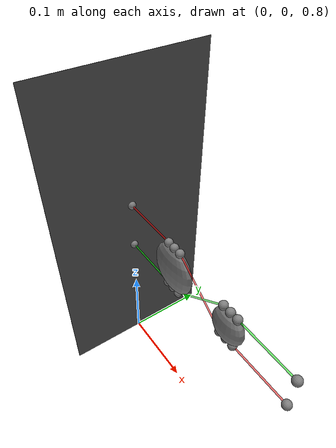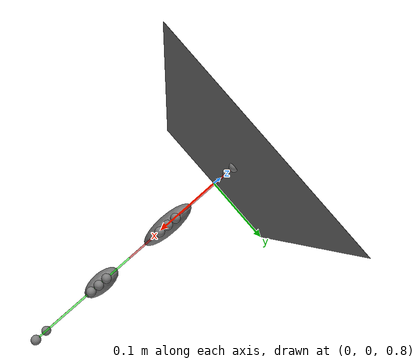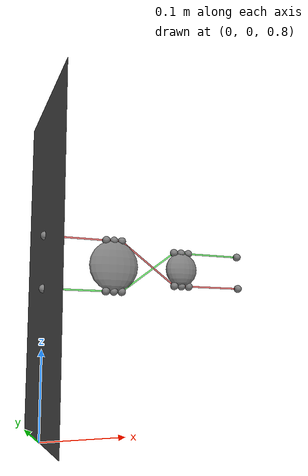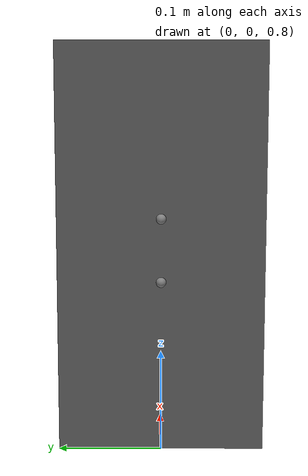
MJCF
<mujoco>

	<option timestep="1e-4"/>
	<option gravity="0 0 -9.8"/>

	<asset>
		<texture type="skybox" builtin="gradient" rgb1="1 1 1" rgb2="0.5 0.5 0.5" width="265" height="256"/>
		<texture name="grid" type="2d" builtin="checker" rgb1="0.1 0.1 0.1" rgb2="0.6 0.6 0.6" width="300" height="300"/>
		<material name="grid" texture="grid" texrepeat="10 10" reflectance="0.2"/>
	</asset>
	<worldbody>

		<camera name="upper view" pos="0 0 1" euler="90 0 0"/>

		<body name = "wall" pos = "0 0 1" euler = "0 90 0">
			<geom type="plane" size="0.2 0.1 0.2" material="grid"/>
			<site name = "beginning1" pos = "0.031 0 0"/>
			<site name = "beginning2" pos = "-0.031 0 0"/>
			<site name = "end1" pos = "0.021 0 0.257"/>
			<site name = "end2" pos = "-0.021 0 0.257"/>
		</body>

		<body name = "R1" pos="0.085 0 1">
			<joint name = "jointR1"  type="slide" axis = "0 0 1"/>
			<geom type = "ellipsoid" size = "0.031 0.01 0.031"/>
			<site name="R1_site" pos="0 0 0"/>

			<site name = "corner1up" pos = "0 0 0.031" size = "0.005"/>
			<site name = "corner1upleft" pos = "-0.01 0 0.031" size = "0.005"/>
			<site name = "corner1upright" pos = "0.01 0 0.031" size = "0.005"/>

			<site name = "corner1down" pos = "0 0 -0.031" size = "0.005"/>
			<site name = "corner1downleft" pos = "-0.01 0 -0.031" size = "0.005"/>
			<site name = "corner1downright" pos = "0.01 0 -0.031" size = "0.005"/>
		</body>

		<body name = "R2" pos="0.175 0 1">
			<joint name = "jointR2" type="slide" axis = "0 0 1"/>
			<geom type = "ellipsoid" size = "0.021 0.01 0.021"/>
			<site name="R2_site" pos="0 0 0"/>

			<site name = "corner2up" pos = "0 0 0.021" size = "0.005"/>
			<site name = "corner2upleft" pos = "-0.01 0 0.021" size = "0.005"/>
			<site name = "corner2upright" pos = "0.01 0 0.021" size = "0.005"/>

			<site name = "corner2down" pos = "0 0 -0.021" size = "0.005"/>
			<site name = "corner2downleft" pos = "-0.01 0 -0.021" size = "0.005"/>
			<site name = "corner2downright" pos = "0.01 0 -0.021" size = "0.005"/>
		</body>
	</worldbody>

	<tendon>
		<spatial name="tendon1" width="0.001" springlength="0.1" damping="10" rgba = "255 0 0 0.55">
			<site site = "beginning2"/>

			<site site = "corner1upleft"/>
			<site site = "corner1up"/>
			<site site = "corner1upright"/>

			<site site = "corner2downleft"/>
			<site site = "corner2down"/>
			<site site = "corner2downright"/>

			<site site = "end1"/>
		</spatial>
	</tendon>

	<tendon>
		<spatial name="tendon2" width="0.001" springlength="0.1" damping="10" rgba = "0 255 0 0.55">>
			<site site = "beginning1"/>

			<site site = "corner1downleft"/>
			<site site = "corner1down"/>
			<site site = "corner1downright"/>

			<site site = "corner2upleft"/>
			<site site = "corner2up"/>
			<site site = "corner2upright"/>

			<site site = "end2"/>
		</spatial>
	</tendon>

	<actuator>
        <position name="For R1" joint="jointR1"/>
		<position name="For R2" joint="jointR2"/>
    </actuator>

	<sensor>
		<framepos objtype="body" objname="R1"/>
		<framepos objtype="body" objname="R2"/>
    </sensor>

</mujoco>
